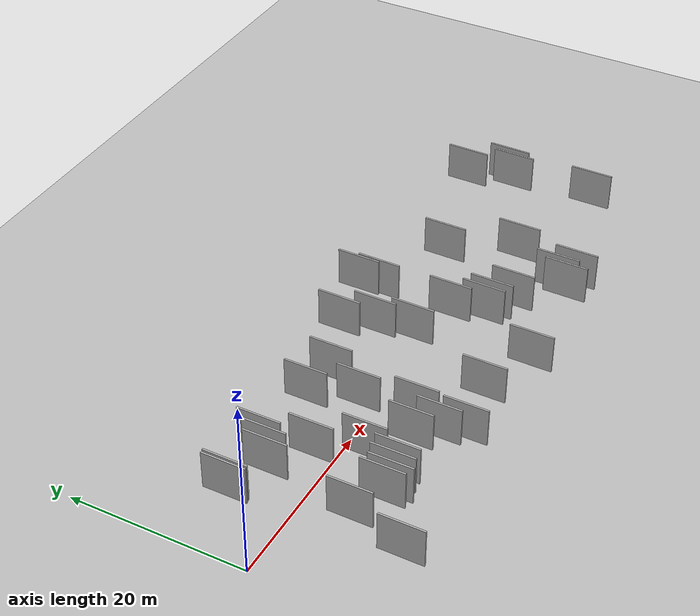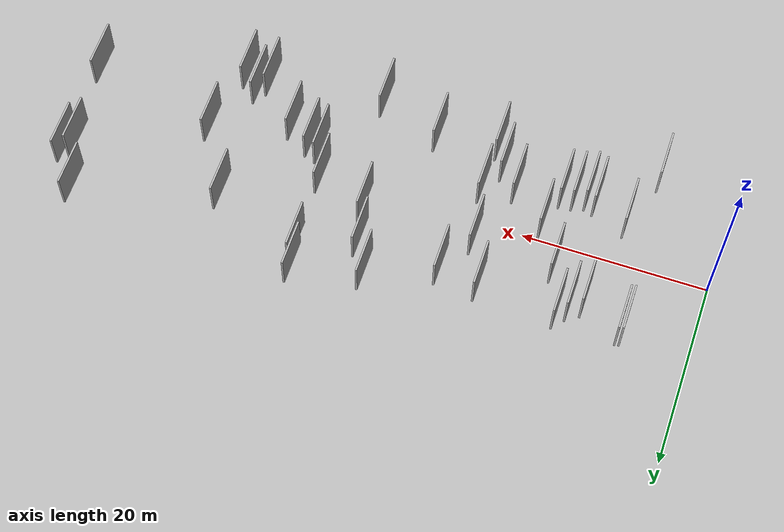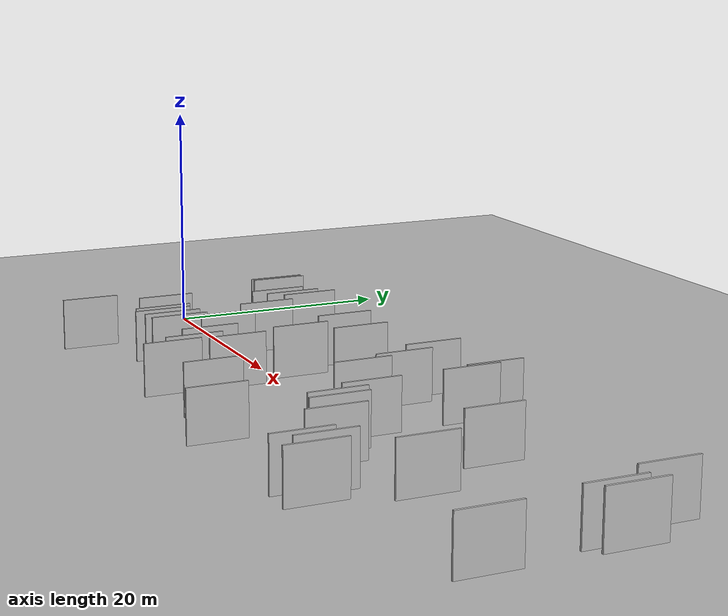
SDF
<?xml version="1.0" encoding="utf-8"?>

<sdf version="1.6">

   <world name="default">

      <gui fullscreen="0">

         <camera name="user_camera">

            <pose>-15 0 4.57585 0 0 0</pose>

            <view_controller>orbit</view_controller>

         </camera>

      </gui>

      <scene>

         <sky>

           <clouds>

             <speed>12</speed>

           </clouds>

         </sky>

         <ambient>0.4 0.4 0.4 1</ambient>

         <background>0.7 0.7 0.7 1</background>

         <shadows>1</shadows>

      </scene>

      <gravity>0 0 -9.8066</gravity>

      <magnetic_field>6e-06 2.3e-05 -4.2e-05</magnetic_field>

      <physics default="0" name="default_physics" type="ode">

         <ode>

            <solver>

               <type>quick</type>

               <iters>10</iters>

               <sor>1.0</sor>

               <use_dynamic_moi_rescaling>0</use_dynamic_moi_rescaling>

            </solver>

            <constraints>

               <cfm>0</cfm>

               <erp>0.2</erp>

               <contact_max_correcting_vel>100</contact_max_correcting_vel>

               <contact_surface_layer>0.001</contact_surface_layer>

            </constraints>

         </ode>

         <max_step_size>0.004</max_step_size>

         <real_time_factor>1</real_time_factor>

         <real_time_update_rate>250</real_time_update_rate>

      </physics>

      <light name="sun" type="directional">

         <cast_shadows>1</cast_shadows>

         <pose>0 0 10 0 0 0</pose>

         <diffuse>0.8 0.8 0.8 1</diffuse>

         <specular>0.2 0.2 0.2 1</specular>

         <attenuation>

            <range>1000</range>

            <constant>0.9</constant>

            <linear>0.01</linear>

            <quadratic>0.001</quadratic>

         </attenuation>

         <direction>-0.5 0.1 -0.9</direction>

      </light>

      <include>

         <name>ground_plane_1</name>

         <uri>model://HANNAS_ground_plane</uri>

         <pose>0 0 0  0 0 0</pose>

      </include>

      <include>

         <name>ground_plane_2</name>

         <uri>model://HANNAS_ground_plane</uri>

         <pose>100 0 0  0 0 0</pose>

      </include>

      <model name="HANNAS_wall_1">

         <static>1</static>

         <pose frame="">38.7993 -11.2165 0.0 0.000000 0.000000 1.570796</pose>

         <link name="link">

            <pose frame="">0 0 2.50 0 0 0</pose>

            <collision name="collision">

               <geometry>

                  <box>

                     <size>5.00 0.2 5.00</size>

                  </box>

               </geometry>

               <max_contacts>10</max_contacts>

               <surface>

                  <contact>

                     <ode/>

                  </contact>

                  <bounce/>

                  <friction>

                     <torsional>

                        <ode/>

                     </torsional>

                     <ode/>

                  </friction>

               </surface>

            </collision>

            <visual name="visual">

               <cast_shadows>0</cast_shadows>

               <geometry>

                  <box>

                     <size>5.00 0.2 5.00</size>

                  </box>

               </geometry>

               <material>

                  <script>

                     <uri>model://HANNAS_wall/materials/scripts</uri>

                     <uri>model://HANNAS_wall/materials/textures</uri>

                     <name>vrc/HANNAS_wall</name>

                  </script>

               </material>

            </visual>

            <self_collide>0</self_collide>

            <enable_wind>0</enable_wind>

            <kinematic>0</kinematic>

         </link>

      </model>

      <model name="HANNAS_wall_2">

         <static>1</static>

         <pose frame="">25.3789 -9.9866 0.0 0.000000 0.000000 1.570796</pose>

         <link name="link">

            <pose frame="">0 0 2.50 0 0 0</pose>

            <collision name="collision">

               <geometry>

                  <box>

                     <size>5.00 0.2 5.00</size>

                  </box>

               </geometry>

               <max_contacts>10</max_contacts>

               <surface>

                  <contact>

                     <ode/>

                  </contact>

                  <bounce/>

                  <friction>

                     <torsional>

                        <ode/>

                     </torsional>

                     <ode/>

                  </friction>

               </surface>

            </collision>

            <visual name="visual">

               <cast_shadows>0</cast_shadows>

               <geometry>

                  <box>

                     <size>5.00 0.2 5.00</size>

                  </box>

               </geometry>

               <material>

                  <script>

                     <uri>model://HANNAS_wall/materials/scripts</uri>

                     <uri>model://HANNAS_wall/materials/textures</uri>

                     <name>vrc/HANNAS_wall</name>

                  </script>

               </material>

            </visual>

            <self_collide>0</self_collide>

            <enable_wind>0</enable_wind>

            <kinematic>0</kinematic>

         </link>

      </model>

      <model name="HANNAS_wall_3">

         <static>1</static>

         <pose frame="">55.7981 -2.3311 0.0 0.000000 0.000000 1.570796</pose>

         <link name="link">

            <pose frame="">0 0 2.50 0 0 0</pose>

            <collision name="collision">

               <geometry>

                  <box>

                     <size>5.00 0.2 5.00</size>

                  </box>

               </geometry>

               <max_contacts>10</max_contacts>

               <surface>

                  <contact>

                     <ode/>

                  </contact>

                  <bounce/>

                  <friction>

                     <torsional>

                        <ode/>

                     </torsional>

                     <ode/>

                  </friction>

               </surface>

            </collision>

            <visual name="visual">

               <cast_shadows>0</cast_shadows>

               <geometry>

                  <box>

                     <size>5.00 0.2 5.00</size>

                  </box>

               </geometry>

               <material>

                  <script>

                     <uri>model://HANNAS_wall/materials/scripts</uri>

                     <uri>model://HANNAS_wall/materials/textures</uri>

                     <name>vrc/HANNAS_wall</name>

                  </script>

               </material>

            </visual>

            <self_collide>0</self_collide>

            <enable_wind>0</enable_wind>

            <kinematic>0</kinematic>

         </link>

      </model>

      <model name="HANNAS_wall_4">

         <static>1</static>

         <pose frame="">11.7300 5.0070 0.0 0.000000 0.000000 1.570796</pose>

         <link name="link">

            <pose frame="">0 0 2.50 0 0 0</pose>

            <collision name="collision">

               <geometry>

                  <box>

                     <size>5.00 0.2 5.00</size>

                  </box>

               </geometry>

               <max_contacts>10</max_contacts>

               <surface>

                  <contact>

                     <ode/>

                  </contact>

                  <bounce/>

                  <friction>

                     <torsional>

                        <ode/>

                     </torsional>

                     <ode/>

                  </friction>

               </surface>

            </collision>

            <visual name="visual">

               <cast_shadows>0</cast_shadows>

               <geometry>

                  <box>

                     <size>5.00 0.2 5.00</size>

                  </box>

               </geometry>

               <material>

                  <script>

                     <uri>model://HANNAS_wall/materials/scripts</uri>

                     <uri>model://HANNAS_wall/materials/textures</uri>

                     <name>vrc/HANNAS_wall</name>

                  </script>

               </material>

            </visual>

            <self_collide>0</self_collide>

            <enable_wind>0</enable_wind>

            <kinematic>0</kinematic>

         </link>

      </model>

      <model name="HANNAS_wall_5">

         <static>1</static>

         <pose frame="">47.3231 -5.3096 0.0 0.000000 0.000000 1.570796</pose>

         <link name="link">

            <pose frame="">0 0 2.50 0 0 0</pose>

            <collision name="collision">

               <geometry>

                  <box>

                     <size>5.00 0.2 5.00</size>

                  </box>

               </geometry>

               <max_contacts>10</max_contacts>

               <surface>

                  <contact>

                     <ode/>

                  </contact>

                  <bounce/>

                  <friction>

                     <torsional>

                        <ode/>

                     </torsional>

                     <ode/>

                  </friction>

               </surface>

            </collision>

            <visual name="visual">

               <cast_shadows>0</cast_shadows>

               <geometry>

                  <box>

                     <size>5.00 0.2 5.00</size>

                  </box>

               </geometry>

               <material>

                  <script>

                     <uri>model://HANNAS_wall/materials/scripts</uri>

                     <uri>model://HANNAS_wall/materials/textures</uri>

                     <name>vrc/HANNAS_wall</name>

                  </script>

               </material>

            </visual>

            <self_collide>0</self_collide>

            <enable_wind>0</enable_wind>

            <kinematic>0</kinematic>

         </link>

      </model>

      <model name="HANNAS_wall_6">

         <static>1</static>

         <pose frame="">36.0656 5.8049 0.0 0.000000 0.000000 1.570796</pose>

         <link name="link">

            <pose frame="">0 0 2.50 0 0 0</pose>

            <collision name="collision">

               <geometry>

                  <box>

                     <size>5.00 0.2 5.00</size>

                  </box>

               </geometry>

               <max_contacts>10</max_contacts>

               <surface>

                  <contact>

                     <ode/>

                  </contact>

                  <bounce/>

                  <friction>

                     <torsional>

                        <ode/>

                     </torsional>

                     <ode/>

                  </friction>

               </surface>

            </collision>

            <visual name="visual">

               <cast_shadows>0</cast_shadows>

               <geometry>

                  <box>

                     <size>5.00 0.2 5.00</size>

                  </box>

               </geometry>

               <material>

                  <script>

                     <uri>model://HANNAS_wall/materials/scripts</uri>

                     <uri>model://HANNAS_wall/materials/textures</uri>

                     <name>vrc/HANNAS_wall</name>

                  </script>

               </material>

            </visual>

            <self_collide>0</self_collide>

            <enable_wind>0</enable_wind>

            <kinematic>0</kinematic>

         </link>

      </model>

      <model name="HANNAS_wall_7">

         <static>1</static>

         <pose frame="">34.4351 9.2944 0.0 0.000000 0.000000 1.570796</pose>

         <link name="link">

            <pose frame="">0 0 2.50 0 0 0</pose>

            <collision name="collision">

               <geometry>

                  <box>

                     <size>5.00 0.2 5.00</size>

                  </box>

               </geometry>

               <max_contacts>10</max_contacts>

               <surface>

                  <contact>

                     <ode/>

                  </contact>

                  <bounce/>

                  <friction>

                     <torsional>

                        <ode/>

                     </torsional>

                     <ode/>

                  </friction>

               </surface>

            </collision>

            <visual name="visual">

               <cast_shadows>0</cast_shadows>

               <geometry>

                  <box>

                     <size>5.00 0.2 5.00</size>

                  </box>

               </geometry>

               <material>

                  <script>

                     <uri>model://HANNAS_wall/materials/scripts</uri>

                     <uri>model://HANNAS_wall/materials/textures</uri>

                     <name>vrc/HANNAS_wall</name>

                  </script>

               </material>

            </visual>

            <self_collide>0</self_collide>

            <enable_wind>0</enable_wind>

            <kinematic>0</kinematic>

         </link>

      </model>

      <model name="HANNAS_wall_8">

         <static>1</static>

         <pose frame="">27.0729 6.2187 0.0 0.000000 0.000000 1.570796</pose>

         <link name="link">

            <pose frame="">0 0 2.50 0 0 0</pose>

            <collision name="collision">

               <geometry>

                  <box>

                     <size>5.00 0.2 5.00</size>

                  </box>

               </geometry>

               <max_contacts>10</max_contacts>

               <surface>

                  <contact>

                     <ode/>

                  </contact>

                  <bounce/>

                  <friction>

                     <torsional>

                        <ode/>

                     </torsional>

                     <ode/>

                  </friction>

               </surface>

            </collision>

            <visual name="visual">

               <cast_shadows>0</cast_shadows>

               <geometry>

                  <box>

                     <size>5.00 0.2 5.00</size>

                  </box>

               </geometry>

               <material>

                  <script>

                     <uri>model://HANNAS_wall/materials/scripts</uri>

                     <uri>model://HANNAS_wall/materials/textures</uri>

                     <name>vrc/HANNAS_wall</name>

                  </script>

               </material>

            </visual>

            <self_collide>0</self_collide>

            <enable_wind>0</enable_wind>

            <kinematic>0</kinematic>

         </link>

      </model>

      <model name="HANNAS_wall_9">

         <static>1</static>

         <pose frame="">7.9589 -11.7408 0.0 0.000000 0.000000 1.570796</pose>

         <link name="link">

            <pose frame="">0 0 2.50 0 0 0</pose>

            <collision name="collision">

               <geometry>

                  <box>

                     <size>5.00 0.2 5.00</size>

                  </box>

               </geometry>

               <max_contacts>10</max_contacts>

               <surface>

                  <contact>

                     <ode/>

                  </contact>

                  <bounce/>

                  <friction>

                     <torsional>

                        <ode/>

                     </torsional>

                     <ode/>

                  </friction>

               </surface>

            </collision>

            <visual name="visual">

               <cast_shadows>0</cast_shadows>

               <geometry>

                  <box>

                     <size>5.00 0.2 5.00</size>

                  </box>

               </geometry>

               <material>

                  <script>

                     <uri>model://HANNAS_wall/materials/scripts</uri>

                     <uri>model://HANNAS_wall/materials/textures</uri>

                     <name>vrc/HANNAS_wall</name>

                  </script>

               </material>

            </visual>

            <self_collide>0</self_collide>

            <enable_wind>0</enable_wind>

            <kinematic>0</kinematic>

         </link>

      </model>

      <model name="HANNAS_wall_10">

         <static>1</static>

         <pose frame="">42.2299 8.5685 0.0 0.000000 0.000000 1.570796</pose>

         <link name="link">

            <pose frame="">0 0 2.50 0 0 0</pose>

            <collision name="collision">

               <geometry>

                  <box>

                     <size>5.00 0.2 5.00</size>

                  </box>

               </geometry>

               <max_contacts>10</max_contacts>

               <surface>

                  <contact>

                     <ode/>

                  </contact>

                  <bounce/>

                  <friction>

                     <torsional>

                        <ode/>

                     </torsional>

                     <ode/>

                  </friction>

               </surface>

            </collision>

            <visual name="visual">

               <cast_shadows>0</cast_shadows>

               <geometry>

                  <box>

                     <size>5.00 0.2 5.00</size>

                  </box>

               </geometry>

               <material>

                  <script>

                     <uri>model://HANNAS_wall/materials/scripts</uri>

                     <uri>model://HANNAS_wall/materials/textures</uri>

                     <name>vrc/HANNAS_wall</name>

                  </script>

               </material>

            </visual>

            <self_collide>0</self_collide>

            <enable_wind>0</enable_wind>

            <kinematic>0</kinematic>

         </link>

      </model>

      <model name="HANNAS_wall_11">

         <static>1</static>

         <pose frame="">41.8410 10.8781 0.0 0.000000 0.000000 1.570796</pose>

         <link name="link">

            <pose frame="">0 0 2.50 0 0 0</pose>

            <collision name="collision">

               <geometry>

                  <box>

                     <size>5.00 0.2 5.00</size>

                  </box>

               </geometry>

               <max_contacts>10</max_contacts>

               <surface>

                  <contact>

                     <ode/>

                  </contact>

                  <bounce/>

                  <friction>

                     <torsional>

                        <ode/>

                     </torsional>

                     <ode/>

                  </friction>

               </surface>

            </collision>

            <visual name="visual">

               <cast_shadows>0</cast_shadows>

               <geometry>

                  <box>

                     <size>5.00 0.2 5.00</size>

                  </box>

               </geometry>

               <material>

                  <script>

                     <uri>model://HANNAS_wall/materials/scripts</uri>

                     <uri>model://HANNAS_wall/materials/textures</uri>

                     <name>vrc/HANNAS_wall</name>

                  </script>

               </material>

            </visual>

            <self_collide>0</self_collide>

            <enable_wind>0</enable_wind>

            <kinematic>0</kinematic>

         </link>

      </model>

      <model name="HANNAS_wall_12">

         <static>1</static>

         <pose frame="">25.6566 -4.3999 0.0 0.000000 0.000000 1.570796</pose>

         <link name="link">

            <pose frame="">0 0 2.50 0 0 0</pose>

            <collision name="collision">

               <geometry>

                  <box>

                     <size>5.00 0.2 5.00</size>

                  </box>

               </geometry>

               <max_contacts>10</max_contacts>

               <surface>

                  <contact>

                     <ode/>

                  </contact>

                  <bounce/>

                  <friction>

                     <torsional>

                        <ode/>

                     </torsional>

                     <ode/>

                  </friction>

               </surface>

            </collision>

            <visual name="visual">

               <cast_shadows>0</cast_shadows>

               <geometry>

                  <box>

                     <size>5.00 0.2 5.00</size>

                  </box>

               </geometry>

               <material>

                  <script>

                     <uri>model://HANNAS_wall/materials/scripts</uri>

                     <uri>model://HANNAS_wall/materials/textures</uri>

                     <name>vrc/HANNAS_wall</name>

                  </script>

               </material>

            </visual>

            <self_collide>0</self_collide>

            <enable_wind>0</enable_wind>

            <kinematic>0</kinematic>

         </link>

      </model>

      <model name="HANNAS_wall_13">

         <static>1</static>

         <pose frame="">52.4814 -8.4280 0.0 0.000000 0.000000 1.570796</pose>

         <link name="link">

            <pose frame="">0 0 2.50 0 0 0</pose>

            <collision name="collision">

               <geometry>

                  <box>

                     <size>5.00 0.2 5.00</size>

                  </box>

               </geometry>

               <max_contacts>10</max_contacts>

               <surface>

                  <contact>

                     <ode/>

                  </contact>

                  <bounce/>

                  <friction>

                     <torsional>

                        <ode/>

                     </torsional>

                     <ode/>

                  </friction>

               </surface>

            </collision>

            <visual name="visual">

               <cast_shadows>0</cast_shadows>

               <geometry>

                  <box>

                     <size>5.00 0.2 5.00</size>

                  </box>

               </geometry>

               <material>

                  <script>

                     <uri>model://HANNAS_wall/materials/scripts</uri>

                     <uri>model://HANNAS_wall/materials/textures</uri>

                     <name>vrc/HANNAS_wall</name>

                  </script>

               </material>

            </visual>

            <self_collide>0</self_collide>

            <enable_wind>0</enable_wind>

            <kinematic>0</kinematic>

         </link>

      </model>

      <model name="HANNAS_wall_14">

         <static>1</static>

         <pose frame="">69.7185 -5.4685 0.0 0.000000 0.000000 1.570796</pose>

         <link name="link">

            <pose frame="">0 0 2.50 0 0 0</pose>

            <collision name="collision">

               <geometry>

                  <box>

                     <size>5.00 0.2 5.00</size>

                  </box>

               </geometry>

               <max_contacts>10</max_contacts>

               <surface>

                  <contact>

                     <ode/>

                  </contact>

                  <bounce/>

                  <friction>

                     <torsional>

                        <ode/>

                     </torsional>

                     <ode/>

                  </friction>

               </surface>

            </collision>

            <visual name="visual">

               <cast_shadows>0</cast_shadows>

               <geometry>

                  <box>

                     <size>5.00 0.2 5.00</size>

                  </box>

               </geometry>

               <material>

                  <script>

                     <uri>model://HANNAS_wall/materials/scripts</uri>

                     <uri>model://HANNAS_wall/materials/textures</uri>

                     <name>vrc/HANNAS_wall</name>

                  </script>

               </material>

            </visual>

            <self_collide>0</self_collide>

            <enable_wind>0</enable_wind>

            <kinematic>0</kinematic>

         </link>

      </model>

      <model name="HANNAS_wall_15">

         <static>1</static>

         <pose frame="">13.0926 5.9286 0.0 0.000000 0.000000 1.570796</pose>

         <link name="link">

            <pose frame="">0 0 2.50 0 0 0</pose>

            <collision name="collision">

               <geometry>

                  <box>

                     <size>5.00 0.2 5.00</size>

                  </box>

               </geometry>

               <max_contacts>10</max_contacts>

               <surface>

                  <contact>

                     <ode/>

                  </contact>

                  <bounce/>

                  <friction>

                     <torsional>

                        <ode/>

                     </torsional>

                     <ode/>

                  </friction>

               </surface>

            </collision>

            <visual name="visual">

               <cast_shadows>0</cast_shadows>

               <geometry>

                  <box>

                     <size>5.00 0.2 5.00</size>

                  </box>

               </geometry>

               <material>

                  <script>

                     <uri>model://HANNAS_wall/materials/scripts</uri>

                     <uri>model://HANNAS_wall/materials/textures</uri>

                     <name>vrc/HANNAS_wall</name>

                  </script>

               </material>

            </visual>

            <self_collide>0</self_collide>

            <enable_wind>0</enable_wind>

            <kinematic>0</kinematic>

         </link>

      </model>

      <model name="HANNAS_wall_16">

         <static>1</static>

         <pose frame="">14.1656 7.1655 0.0 0.000000 0.000000 1.570796</pose>

         <link name="link">

            <pose frame="">0 0 2.50 0 0 0</pose>

            <collision name="collision">

               <geometry>

                  <box>

                     <size>5.00 0.2 5.00</size>

                  </box>

               </geometry>

               <max_contacts>10</max_contacts>

               <surface>

                  <contact>

                     <ode/>

                  </contact>

                  <bounce/>

                  <friction>

                     <torsional>

                        <ode/>

                     </torsional>

                     <ode/>

                  </friction>

               </surface>

            </collision>

            <visual name="visual">

               <cast_shadows>0</cast_shadows>

               <geometry>

                  <box>

                     <size>5.00 0.2 5.00</size>

                  </box>

               </geometry>

               <material>

                  <script>

                     <uri>model://HANNAS_wall/materials/scripts</uri>

                     <uri>model://HANNAS_wall/materials/textures</uri>

                     <name>vrc/HANNAS_wall</name>

                  </script>

               </material>

            </visual>

            <self_collide>0</self_collide>

            <enable_wind>0</enable_wind>

            <kinematic>0</kinematic>

         </link>

      </model>

      <model name="HANNAS_wall_17">

         <static>1</static>

         <pose frame="">54.1721 -9.9161 0.0 0.000000 0.000000 1.570796</pose>

         <link name="link">

            <pose frame="">0 0 2.50 0 0 0</pose>

            <collision name="collision">

               <geometry>

                  <box>

                     <size>5.00 0.2 5.00</size>

                  </box>

               </geometry>

               <max_contacts>10</max_contacts>

               <surface>

                  <contact>

                     <ode/>

                  </contact>

                  <bounce/>

                  <friction>

                     <torsional>

                        <ode/>

                     </torsional>

                     <ode/>

                  </friction>

               </surface>

            </collision>

            <visual name="visual">

               <cast_shadows>0</cast_shadows>

               <geometry>

                  <box>

                     <size>5.00 0.2 5.00</size>

                  </box>

               </geometry>

               <material>

                  <script>

                     <uri>model://HANNAS_wall/materials/scripts</uri>

                     <uri>model://HANNAS_wall/materials/textures</uri>

                     <name>vrc/HANNAS_wall</name>

                  </script>

               </material>

            </visual>

            <self_collide>0</self_collide>

            <enable_wind>0</enable_wind>

            <kinematic>0</kinematic>

         </link>

      </model>

      <model name="HANNAS_wall_18">

         <static>1</static>

         <pose frame="">68.8448 4.1552 0.0 0.000000 0.000000 1.570796</pose>

         <link name="link">

            <pose frame="">0 0 2.50 0 0 0</pose>

            <collision name="collision">

               <geometry>

                  <box>

                     <size>5.00 0.2 5.00</size>

                  </box>

               </geometry>

               <max_contacts>10</max_contacts>

               <surface>

                  <contact>

                     <ode/>

                  </contact>

                  <bounce/>

                  <friction>

                     <torsional>

                        <ode/>

                     </torsional>

                     <ode/>

                  </friction>

               </surface>

            </collision>

            <visual name="visual">

               <cast_shadows>0</cast_shadows>

               <geometry>

                  <box>

                     <size>5.00 0.2 5.00</size>

                  </box>

               </geometry>

               <material>

                  <script>

                     <uri>model://HANNAS_wall/materials/scripts</uri>

                     <uri>model://HANNAS_wall/materials/textures</uri>

                     <name>vrc/HANNAS_wall</name>

                  </script>

               </material>

            </visual>

            <self_collide>0</self_collide>

            <enable_wind>0</enable_wind>

            <kinematic>0</kinematic>

         </link>

      </model>

      <model name="HANNAS_wall_19">

         <static>1</static>

         <pose frame="">22.1797 -5.5335 0.0 0.000000 0.000000 1.570796</pose>

         <link name="link">

            <pose frame="">0 0 2.50 0 0 0</pose>

            <collision name="collision">

               <geometry>

                  <box>

                     <size>5.00 0.2 5.00</size>

                  </box>

               </geometry>

               <max_contacts>10</max_contacts>

               <surface>

                  <contact>

                     <ode/>

                  </contact>

                  <bounce/>

                  <friction>

                     <torsional>

                        <ode/>

                     </torsional>

                     <ode/>

                  </friction>

               </surface>

            </collision>

            <visual name="visual">

               <cast_shadows>0</cast_shadows>

               <geometry>

                  <box>

                     <size>5.00 0.2 5.00</size>

                  </box>

               </geometry>

               <material>

                  <script>

                     <uri>model://HANNAS_wall/materials/scripts</uri>

                     <uri>model://HANNAS_wall/materials/textures</uri>

                     <name>vrc/HANNAS_wall</name>

                  </script>

               </material>

            </visual>

            <self_collide>0</self_collide>

            <enable_wind>0</enable_wind>

            <kinematic>0</kinematic>

         </link>

      </model>

      <model name="HANNAS_wall_20">

         <static>1</static>

         <pose frame="">36.9171 1.7299 0.0 0.000000 0.000000 1.570796</pose>

         <link name="link">

            <pose frame="">0 0 2.50 0 0 0</pose>

            <collision name="collision">

               <geometry>

                  <box>

                     <size>5.00 0.2 5.00</size>

                  </box>

               </geometry>

               <max_contacts>10</max_contacts>

               <surface>

                  <contact>

                     <ode/>

                  </contact>

                  <bounce/>

                  <friction>

                     <torsional>

                        <ode/>

                     </torsional>

                     <ode/>

                  </friction>

               </surface>

            </collision>

            <visual name="visual">

               <cast_shadows>0</cast_shadows>

               <geometry>

                  <box>

                     <size>5.00 0.2 5.00</size>

                  </box>

               </geometry>

               <material>

                  <script>

                     <uri>model://HANNAS_wall/materials/scripts</uri>

                     <uri>model://HANNAS_wall/materials/textures</uri>

                     <name>vrc/HANNAS_wall</name>

                  </script>

               </material>

            </visual>

            <self_collide>0</self_collide>

            <enable_wind>0</enable_wind>

            <kinematic>0</kinematic>

         </link>

      </model>

      <model name="HANNAS_wall_21">

         <static>1</static>

         <pose frame="">15.8495 2.2173 0.0 0.000000 0.000000 1.570796</pose>

         <link name="link">

            <pose frame="">0 0 2.50 0 0 0</pose>

            <collision name="collision">

               <geometry>

                  <box>

                     <size>5.00 0.2 5.00</size>

                  </box>

               </geometry>

               <max_contacts>10</max_contacts>

               <surface>

                  <contact>

                     <ode/>

                  </contact>

                  <bounce/>

                  <friction>

                     <torsional>

                        <ode/>

                     </torsional>

                     <ode/>

                  </friction>

               </surface>

            </collision>

            <visual name="visual">

               <cast_shadows>0</cast_shadows>

               <geometry>

                  <box>

                     <size>5.00 0.2 5.00</size>

                  </box>

               </geometry>

               <material>

                  <script>

                     <uri>model://HANNAS_wall/materials/scripts</uri>

                     <uri>model://HANNAS_wall/materials/textures</uri>

                     <name>vrc/HANNAS_wall</name>

                  </script>

               </material>

            </visual>

            <self_collide>0</self_collide>

            <enable_wind>0</enable_wind>

            <kinematic>0</kinematic>

         </link>

      </model>

      <model name="HANNAS_wall_22">

         <static>1</static>

         <pose frame="">32.0097 -8.9492 0.0 0.000000 0.000000 1.570796</pose>

         <link name="link">

            <pose frame="">0 0 2.50 0 0 0</pose>

            <collision name="collision">

               <geometry>

                  <box>

                     <size>5.00 0.2 5.00</size>

                  </box>

               </geometry>

               <max_contacts>10</max_contacts>

               <surface>

                  <contact>

                     <ode/>

                  </contact>

                  <bounce/>

                  <friction>

                     <torsional>

                        <ode/>

                     </torsional>

                     <ode/>

                  </friction>

               </surface>

            </collision>

            <visual name="visual">

               <cast_shadows>0</cast_shadows>

               <geometry>

                  <box>

                     <size>5.00 0.2 5.00</size>

                  </box>

               </geometry>

               <material>

                  <script>

                     <uri>model://HANNAS_wall/materials/scripts</uri>

                     <uri>model://HANNAS_wall/materials/textures</uri>

                     <name>vrc/HANNAS_wall</name>

                  </script>

               </material>

            </visual>

            <self_collide>0</self_collide>

            <enable_wind>0</enable_wind>

            <kinematic>0</kinematic>

         </link>

      </model>

      <model name="HANNAS_wall_23">

         <static>1</static>

         <pose frame="">13.6922 -6.7933 0.0 0.000000 0.000000 1.570796</pose>

         <link name="link">

            <pose frame="">0 0 2.50 0 0 0</pose>

            <collision name="collision">

               <geometry>

                  <box>

                     <size>5.00 0.2 5.00</size>

                  </box>

               </geometry>

               <max_contacts>10</max_contacts>

               <surface>

                  <contact>

                     <ode/>

                  </contact>

                  <bounce/>

                  <friction>

                     <torsional>

                        <ode/>

                     </torsional>

                     <ode/>

                  </friction>

               </surface>

            </collision>

            <visual name="visual">

               <cast_shadows>0</cast_shadows>

               <geometry>

                  <box>

                     <size>5.00 0.2 5.00</size>

                  </box>

               </geometry>

               <material>

                  <script>

                     <uri>model://HANNAS_wall/materials/scripts</uri>

                     <uri>model://HANNAS_wall/materials/textures</uri>

                     <name>vrc/HANNAS_wall</name>

                  </script>

               </material>

            </visual>

            <self_collide>0</self_collide>

            <enable_wind>0</enable_wind>

            <kinematic>0</kinematic>

         </link>

      </model>

      <model name="HANNAS_wall_24">

         <static>1</static>

         <pose frame="">22.6982 6.7340 0.0 0.000000 0.000000 1.570796</pose>

         <link name="link">

            <pose frame="">0 0 2.50 0 0 0</pose>

            <collision name="collision">

               <geometry>

                  <box>

                     <size>5.00 0.2 5.00</size>

                  </box>

               </geometry>

               <max_contacts>10</max_contacts>

               <surface>

                  <contact>

                     <ode/>

                  </contact>

                  <bounce/>

                  <friction>

                     <torsional>

                        <ode/>

                     </torsional>

                     <ode/>

                  </friction>

               </surface>

            </collision>

            <visual name="visual">

               <cast_shadows>0</cast_shadows>

               <geometry>

                  <box>

                     <size>5.00 0.2 5.00</size>

                  </box>

               </geometry>

               <material>

                  <script>

                     <uri>model://HANNAS_wall/materials/scripts</uri>

                     <uri>model://HANNAS_wall/materials/textures</uri>

                     <name>vrc/HANNAS_wall</name>

                  </script>

               </material>

            </visual>

            <self_collide>0</self_collide>

            <enable_wind>0</enable_wind>

            <kinematic>0</kinematic>

         </link>

      </model>

      <model name="HANNAS_wall_25">

         <static>1</static>

         <pose frame="">24.6915 1.7070 0.0 0.000000 0.000000 1.570796</pose>

         <link name="link">

            <pose frame="">0 0 2.50 0 0 0</pose>

            <collision name="collision">

               <geometry>

                  <box>

                     <size>5.00 0.2 5.00</size>

                  </box>

               </geometry>

               <max_contacts>10</max_contacts>

               <surface>

                  <contact>

                     <ode/>

                  </contact>

                  <bounce/>

                  <friction>

                     <torsional>

                        <ode/>

                     </torsional>

                     <ode/>

                  </friction>

               </surface>

            </collision>

            <visual name="visual">

               <cast_shadows>0</cast_shadows>

               <geometry>

                  <box>

                     <size>5.00 0.2 5.00</size>

                  </box>

               </geometry>

               <material>

                  <script>

                     <uri>model://HANNAS_wall/materials/scripts</uri>

                     <uri>model://HANNAS_wall/materials/textures</uri>

                     <name>vrc/HANNAS_wall</name>

                  </script>

               </material>

            </visual>

            <self_collide>0</self_collide>

            <enable_wind>0</enable_wind>

            <kinematic>0</kinematic>

         </link>

      </model>

      <model name="HANNAS_wall_26">

         <static>1</static>

         <pose frame="">44.8303 -3.9033 0.0 0.000000 0.000000 1.570796</pose>

         <link name="link">

            <pose frame="">0 0 2.50 0 0 0</pose>

            <collision name="collision">

               <geometry>

                  <box>

                     <size>5.00 0.2 5.00</size>

                  </box>

               </geometry>

               <max_contacts>10</max_contacts>

               <surface>

                  <contact>

                     <ode/>

                  </contact>

                  <bounce/>

                  <friction>

                     <torsional>

                        <ode/>

                     </torsional>

                     <ode/>

                  </friction>

               </surface>

            </collision>

            <visual name="visual">

               <cast_shadows>0</cast_shadows>

               <geometry>

                  <box>

                     <size>5.00 0.2 5.00</size>

                  </box>

               </geometry>

               <material>

                  <script>

                     <uri>model://HANNAS_wall/materials/scripts</uri>

                     <uri>model://HANNAS_wall/materials/textures</uri>

                     <name>vrc/HANNAS_wall</name>

                  </script>

               </material>

            </visual>

            <self_collide>0</self_collide>

            <enable_wind>0</enable_wind>

            <kinematic>0</kinematic>

         </link>

      </model>

      <model name="HANNAS_wall_27">

         <static>1</static>

         <pose frame="">69.8069 5.1434 0.0 0.000000 0.000000 1.570796</pose>

         <link name="link">

            <pose frame="">0 0 2.50 0 0 0</pose>

            <collision name="collision">

               <geometry>

                  <box>

                     <size>5.00 0.2 5.00</size>

                  </box>

               </geometry>

               <max_contacts>10</max_contacts>

               <surface>

                  <contact>

                     <ode/>

                  </contact>

                  <bounce/>

                  <friction>

                     <torsional>

                        <ode/>

                     </torsional>

                     <ode/>

                  </friction>

               </surface>

            </collision>

            <visual name="visual">

               <cast_shadows>0</cast_shadows>

               <geometry>

                  <box>

                     <size>5.00 0.2 5.00</size>

                  </box>

               </geometry>

               <material>

                  <script>

                     <uri>model://HANNAS_wall/materials/scripts</uri>

                     <uri>model://HANNAS_wall/materials/textures</uri>

                     <name>vrc/HANNAS_wall</name>

                  </script>

               </material>

            </visual>

            <self_collide>0</self_collide>

            <enable_wind>0</enable_wind>

            <kinematic>0</kinematic>

         </link>

      </model>

      <model name="HANNAS_wall_28">

         <static>1</static>

         <pose frame="">43.6022 -3.4928 0.0 0.000000 0.000000 1.570796</pose>

         <link name="link">

            <pose frame="">0 0 2.50 0 0 0</pose>

            <collision name="collision">

               <geometry>

                  <box>

                     <size>5.00 0.2 5.00</size>

                  </box>

               </geometry>

               <max_contacts>10</max_contacts>

               <surface>

                  <contact>

                     <ode/>

                  </contact>

                  <bounce/>

                  <friction>

                     <torsional>

                        <ode/>

                     </torsional>

                     <ode/>

                  </friction>

               </surface>

            </collision>

            <visual name="visual">

               <cast_shadows>0</cast_shadows>

               <geometry>

                  <box>

                     <size>5.00 0.2 5.00</size>

                  </box>

               </geometry>

               <material>

                  <script>

                     <uri>model://HANNAS_wall/materials/scripts</uri>

                     <uri>model://HANNAS_wall/materials/textures</uri>

                     <name>vrc/HANNAS_wall</name>

                  </script>

               </material>

            </visual>

            <self_collide>0</self_collide>

            <enable_wind>0</enable_wind>

            <kinematic>0</kinematic>

         </link>

      </model>

      <model name="HANNAS_wall_29">

         <static>1</static>

         <pose frame="">15.9754 -6.7134 0.0 0.000000 0.000000 1.570796</pose>

         <link name="link">

            <pose frame="">0 0 2.50 0 0 0</pose>

            <collision name="collision">

               <geometry>

                  <box>

                     <size>5.00 0.2 5.00</size>

                  </box>

               </geometry>

               <max_contacts>10</max_contacts>

               <surface>

                  <contact>

                     <ode/>

                  </contact>

                  <bounce/>

                  <friction>

                     <torsional>

                        <ode/>

                     </torsional>

                     <ode/>

                  </friction>

               </surface>

            </collision>

            <visual name="visual">

               <cast_shadows>0</cast_shadows>

               <geometry>

                  <box>

                     <size>5.00 0.2 5.00</size>

                  </box>

               </geometry>

               <material>

                  <script>

                     <uri>model://HANNAS_wall/materials/scripts</uri>

                     <uri>model://HANNAS_wall/materials/textures</uri>

                     <name>vrc/HANNAS_wall</name>

                  </script>

               </material>

            </visual>

            <self_collide>0</self_collide>

            <enable_wind>0</enable_wind>

            <kinematic>0</kinematic>

         </link>

      </model>

      <model name="HANNAS_wall_30">

         <static>1</static>

         <pose frame="">7.0749 6.7991 0.0 0.000000 0.000000 1.570796</pose>

         <link name="link">

            <pose frame="">0 0 2.50 0 0 0</pose>

            <collision name="collision">

               <geometry>

                  <box>

                     <size>5.00 0.2 5.00</size>

                  </box>

               </geometry>

               <max_contacts>10</max_contacts>

               <surface>

                  <contact>

                     <ode/>

                  </contact>

                  <bounce/>

                  <friction>

                     <torsional>

                        <ode/>

                     </torsional>

                     <ode/>

                  </friction>

               </surface>

            </collision>

            <visual name="visual">

               <cast_shadows>0</cast_shadows>

               <geometry>

                  <box>

                     <size>5.00 0.2 5.00</size>

                  </box>

               </geometry>

               <material>

                  <script>

                     <uri>model://HANNAS_wall/materials/scripts</uri>

                     <uri>model://HANNAS_wall/materials/textures</uri>

                     <name>vrc/HANNAS_wall</name>

                  </script>

               </material>

            </visual>

            <self_collide>0</self_collide>

            <enable_wind>0</enable_wind>

            <kinematic>0</kinematic>

         </link>

      </model>

      <model name="HANNAS_wall_31">

         <static>1</static>

         <pose frame="">14.6717 -7.1499 0.0 0.000000 0.000000 1.570796</pose>

         <link name="link">

            <pose frame="">0 0 2.50 0 0 0</pose>

            <collision name="collision">

               <geometry>

                  <box>

                     <size>5.00 0.2 5.00</size>

                  </box>

               </geometry>

               <max_contacts>10</max_contacts>

               <surface>

                  <contact>

                     <ode/>

                  </contact>

                  <bounce/>

                  <friction>

                     <torsional>

                        <ode/>

                     </torsional>

                     <ode/>

                  </friction>

               </surface>

            </collision>

            <visual name="visual">

               <cast_shadows>0</cast_shadows>

               <geometry>

                  <box>

                     <size>5.00 0.2 5.00</size>

                  </box>

               </geometry>

               <material>

                  <script>

                     <uri>model://HANNAS_wall/materials/scripts</uri>

                     <uri>model://HANNAS_wall/materials/textures</uri>

                     <name>vrc/HANNAS_wall</name>

                  </script>

               </material>

            </visual>

            <self_collide>0</self_collide>

            <enable_wind>0</enable_wind>

            <kinematic>0</kinematic>

         </link>

      </model>

      <model name="HANNAS_wall_32">

         <static>1</static>

         <pose frame="">7.5008 6.8829 0.0 0.000000 0.000000 1.570796</pose>

         <link name="link">

            <pose frame="">0 0 2.50 0 0 0</pose>

            <collision name="collision">

               <geometry>

                  <box>

                     <size>5.00 0.2 5.00</size>

                  </box>

               </geometry>

               <max_contacts>10</max_contacts>

               <surface>

                  <contact>

                     <ode/>

                  </contact>

                  <bounce/>

                  <friction>

                     <torsional>

                        <ode/>

                     </torsional>

                     <ode/>

                  </friction>

               </surface>

            </collision>

            <visual name="visual">

               <cast_shadows>0</cast_shadows>

               <geometry>

                  <box>

                     <size>5.00 0.2 5.00</size>

                  </box>

               </geometry>

               <material>

                  <script>

                     <uri>model://HANNAS_wall/materials/scripts</uri>

                     <uri>model://HANNAS_wall/materials/textures</uri>

                     <name>vrc/HANNAS_wall</name>

                  </script>

               </material>

            </visual>

            <self_collide>0</self_collide>

            <enable_wind>0</enable_wind>

            <kinematic>0</kinematic>

         </link>

      </model>

      <model name="HANNAS_wall_33">

         <static>1</static>

         <pose frame="">17.3234 -6.5384 0.0 0.000000 0.000000 1.570796</pose>

         <link name="link">

            <pose frame="">0 0 2.50 0 0 0</pose>

            <collision name="collision">

               <geometry>

                  <box>

                     <size>5.00 0.2 5.00</size>

                  </box>

               </geometry>

               <max_contacts>10</max_contacts>

               <surface>

                  <contact>

                     <ode/>

                  </contact>

                  <bounce/>

                  <friction>

                     <torsional>

                        <ode/>

                     </torsional>

                     <ode/>

                  </friction>

               </surface>

            </collision>

            <visual name="visual">

               <cast_shadows>0</cast_shadows>

               <geometry>

                  <box>

                     <size>5.00 0.2 5.00</size>

                  </box>

               </geometry>

               <material>

                  <script>

                     <uri>model://HANNAS_wall/materials/scripts</uri>

                     <uri>model://HANNAS_wall/materials/textures</uri>

                     <name>vrc/HANNAS_wall</name>

                  </script>

               </material>

            </visual>

            <self_collide>0</self_collide>

            <enable_wind>0</enable_wind>

            <kinematic>0</kinematic>

         </link>

      </model>

      <model name="HANNAS_wall_34">

         <static>1</static>

         <pose frame="">51.8593 5.1051 0.0 0.000000 0.000000 1.570796</pose>

         <link name="link">

            <pose frame="">0 0 2.50 0 0 0</pose>

            <collision name="collision">

               <geometry>

                  <box>

                     <size>5.00 0.2 5.00</size>

                  </box>

               </geometry>

               <max_contacts>10</max_contacts>

               <surface>

                  <contact>

                     <ode/>

                  </contact>

                  <bounce/>

                  <friction>

                     <torsional>

                        <ode/>

                     </torsional>

                     <ode/>

                  </friction>

               </surface>

            </collision>

            <visual name="visual">

               <cast_shadows>0</cast_shadows>

               <geometry>

                  <box>

                     <size>5.00 0.2 5.00</size>

                  </box>

               </geometry>

               <material>

                  <script>

                     <uri>model://HANNAS_wall/materials/scripts</uri>

                     <uri>model://HANNAS_wall/materials/textures</uri>

                     <name>vrc/HANNAS_wall</name>

                  </script>

               </material>

            </visual>

            <self_collide>0</self_collide>

            <enable_wind>0</enable_wind>

            <kinematic>0</kinematic>

         </link>

      </model>

      <model name="HANNAS_wall_35">

         <static>1</static>

         <pose frame="">18.3442 -2.4130 0.0 0.000000 0.000000 1.570796</pose>

         <link name="link">

            <pose frame="">0 0 2.50 0 0 0</pose>

            <collision name="collision">

               <geometry>

                  <box>

                     <size>5.00 0.2 5.00</size>

                  </box>

               </geometry>

               <max_contacts>10</max_contacts>

               <surface>

                  <contact>

                     <ode/>

                  </contact>

                  <bounce/>

                  <friction>

                     <torsional>

                        <ode/>

                     </torsional>

                     <ode/>

                  </friction>

               </surface>

            </collision>

            <visual name="visual">

               <cast_shadows>0</cast_shadows>

               <geometry>

                  <box>

                     <size>5.00 0.2 5.00</size>

                  </box>

               </geometry>

               <material>

                  <script>

                     <uri>model://HANNAS_wall/materials/scripts</uri>

                     <uri>model://HANNAS_wall/materials/textures</uri>

                     <name>vrc/HANNAS_wall</name>

                  </script>

               </material>

            </visual>

            <self_collide>0</self_collide>

            <enable_wind>0</enable_wind>

            <kinematic>0</kinematic>

         </link>

      </model>

      <model name="HANNAS_wall_36">

         <static>1</static>

         <pose frame="">42.3487 -0.1178 0.0 0.000000 0.000000 1.570796</pose>

         <link name="link">

            <pose frame="">0 0 2.50 0 0 0</pose>

            <collision name="collision">

               <geometry>

                  <box>

                     <size>5.00 0.2 5.00</size>

                  </box>

               </geometry>

               <max_contacts>10</max_contacts>

               <surface>

                  <contact>

                     <ode/>

                  </contact>

                  <bounce/>

                  <friction>

                     <torsional>

                        <ode/>

                     </torsional>

                     <ode/>

                  </friction>

               </surface>

            </collision>

            <visual name="visual">

               <cast_shadows>0</cast_shadows>

               <geometry>

                  <box>

                     <size>5.00 0.2 5.00</size>

                  </box>

               </geometry>

               <material>

                  <script>

                     <uri>model://HANNAS_wall/materials/scripts</uri>

                     <uri>model://HANNAS_wall/materials/textures</uri>

                     <name>vrc/HANNAS_wall</name>

                  </script>

               </material>

            </visual>

            <self_collide>0</self_collide>

            <enable_wind>0</enable_wind>

            <kinematic>0</kinematic>

         </link>

      </model>

      <model name="HANNAS_wall_37">

         <static>1</static>

         <pose frame="">67.1206 9.4026 0.0 0.000000 0.000000 1.570796</pose>

         <link name="link">

            <pose frame="">0 0 2.50 0 0 0</pose>

            <collision name="collision">

               <geometry>

                  <box>

                     <size>5.00 0.2 5.00</size>

                  </box>

               </geometry>

               <max_contacts>10</max_contacts>

               <surface>

                  <contact>

                     <ode/>

                  </contact>

                  <bounce/>

                  <friction>

                     <torsional>

                        <ode/>

                     </torsional>

                     <ode/>

                  </friction>

               </surface>

            </collision>

            <visual name="visual">

               <cast_shadows>0</cast_shadows>

               <geometry>

                  <box>

                     <size>5.00 0.2 5.00</size>

                  </box>

               </geometry>

               <material>

                  <script>

                     <uri>model://HANNAS_wall/materials/scripts</uri>

                     <uri>model://HANNAS_wall/materials/textures</uri>

                     <name>vrc/HANNAS_wall</name>

                  </script>

               </material>

            </visual>

            <self_collide>0</self_collide>

            <enable_wind>0</enable_wind>

            <kinematic>0</kinematic>

         </link>

      </model>

      <model name="HANNAS_wall_38">

         <static>1</static>

         <pose frame="">51.4935 -9.8139 0.0 0.000000 0.000000 1.570796</pose>

         <link name="link">

            <pose frame="">0 0 2.50 0 0 0</pose>

            <collision name="collision">

               <geometry>

                  <box>

                     <size>5.00 0.2 5.00</size>

                  </box>

               </geometry>

               <max_contacts>10</max_contacts>

               <surface>

                  <contact>

                     <ode/>

                  </contact>

                  <bounce/>

                  <friction>

                     <torsional>

                        <ode/>

                     </torsional>

                     <ode/>

                  </friction>

               </surface>

            </collision>

            <visual name="visual">

               <cast_shadows>0</cast_shadows>

               <geometry>

                  <box>

                     <size>5.00 0.2 5.00</size>

                  </box>

               </geometry>

               <material>

                  <script>

                     <uri>model://HANNAS_wall/materials/scripts</uri>

                     <uri>model://HANNAS_wall/materials/textures</uri>

                     <name>vrc/HANNAS_wall</name>

                  </script>

               </material>

            </visual>

            <self_collide>0</self_collide>

            <enable_wind>0</enable_wind>

            <kinematic>0</kinematic>

         </link>

      </model>

      <model name="HANNAS_wall_39">

         <static>1</static>

         <pose frame="">24.1463 -7.6644 0.0 0.000000 0.000000 1.570796</pose>

         <link name="link">

            <pose frame="">0 0 2.50 0 0 0</pose>

            <collision name="collision">

               <geometry>

                  <box>

                     <size>5.00 0.2 5.00</size>

                  </box>

               </geometry>

               <max_contacts>10</max_contacts>

               <surface>

                  <contact>

                     <ode/>

                  </contact>

                  <bounce/>

                  <friction>

                     <torsional>

                        <ode/>

                     </torsional>

                     <ode/>

                  </friction>

               </surface>

            </collision>

            <visual name="visual">

               <cast_shadows>0</cast_shadows>

               <geometry>

                  <box>

                     <size>5.00 0.2 5.00</size>

                  </box>

               </geometry>

               <material>

                  <script>

                     <uri>model://HANNAS_wall/materials/scripts</uri>

                     <uri>model://HANNAS_wall/materials/textures</uri>

                     <name>vrc/HANNAS_wall</name>

                  </script>

               </material>

            </visual>

            <self_collide>0</self_collide>

            <enable_wind>0</enable_wind>

            <kinematic>0</kinematic>

         </link>

      </model>

      <model name="HANNAS_wall_40">

         <static>1</static>

         <pose frame="">10.0114 -5.2711 0.0 0.000000 0.000000 1.570796</pose>

         <link name="link">

            <pose frame="">0 0 2.50 0 0 0</pose>

            <collision name="collision">

               <geometry>

                  <box>

                     <size>5.00 0.2 5.00</size>

                  </box>

               </geometry>

               <max_contacts>10</max_contacts>

               <surface>

                  <contact>

                     <ode/>

                  </contact>

                  <bounce/>

                  <friction>

                     <torsional>

                        <ode/>

                     </torsional>

                     <ode/>

                  </friction>

               </surface>

            </collision>

            <visual name="visual">

               <cast_shadows>0</cast_shadows>

               <geometry>

                  <box>

                     <size>5.00 0.2 5.00</size>

                  </box>

               </geometry>

               <material>

                  <script>

                     <uri>model://HANNAS_wall/materials/scripts</uri>

                     <uri>model://HANNAS_wall/materials/textures</uri>

                     <name>vrc/HANNAS_wall</name>

                  </script>

               </material>

            </visual>

            <self_collide>0</self_collide>

            <enable_wind>0</enable_wind>

            <kinematic>0</kinematic>

         </link>

      </model>

   </world>

</sdf>
